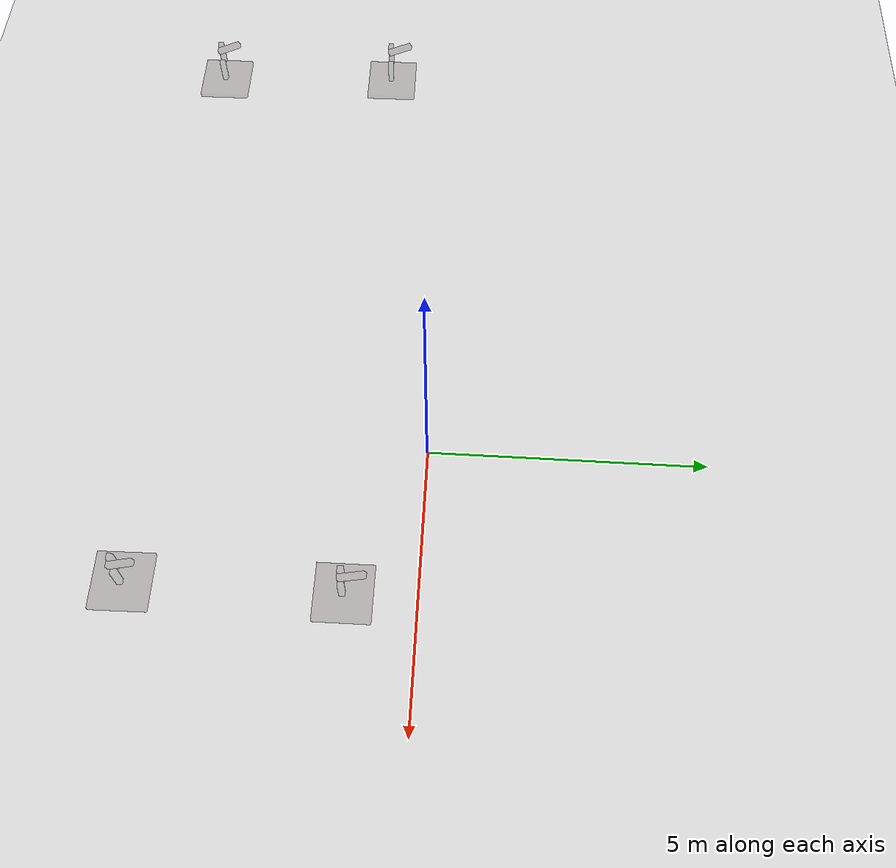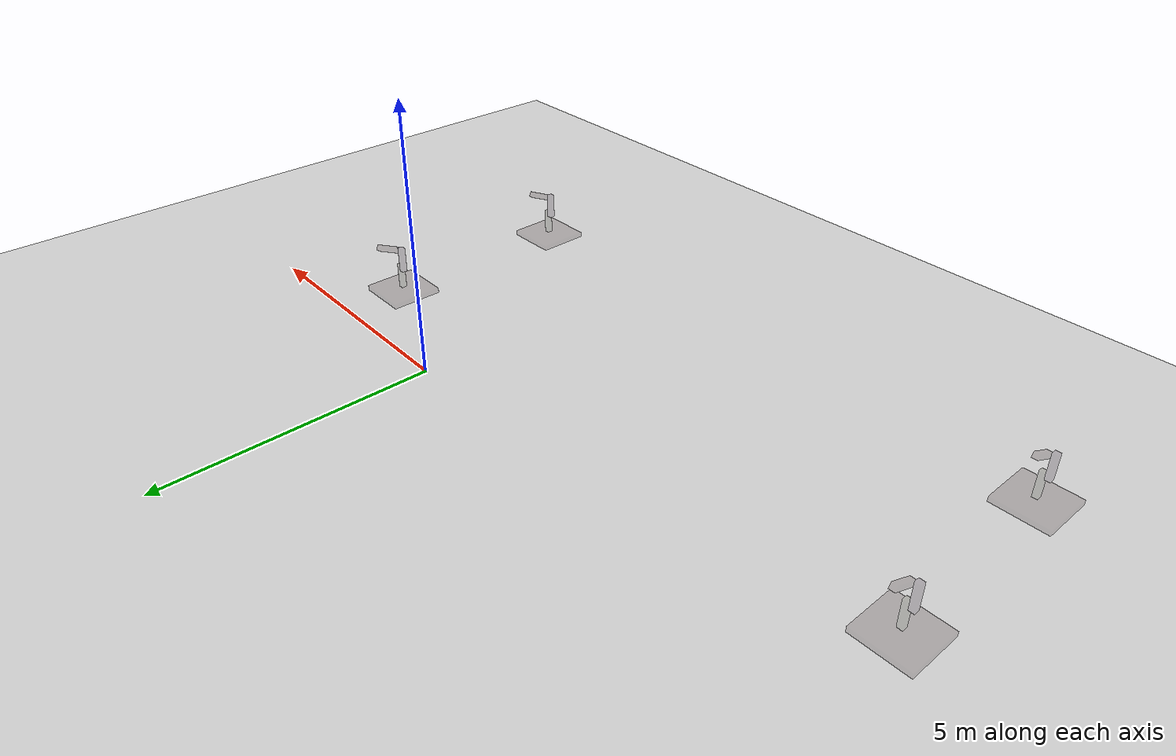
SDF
<sdf version="1.6">
 <world name="default">
  <model name="ground_plane">
   <static>1</static>
   <link name="link">
    <collision name="collision">
     <geometry><plane><normal>0 0 1</normal><size>100 100</size></plane></geometry>
     <surface>
      <contact><collide_bitmask>65535</collide_bitmask></contact>
      <friction><ode><mu>100</mu><mu2>50</mu2></ode></friction>
     </surface>
    </collision>
    <visual name="visual">
     <cast_shadows>0</cast_shadows>
     <geometry><plane><normal>0 0 1</normal><size>100 100</size></plane></geometry>
     <material>
      <script><uri>file://media/materials/scripts/gazebo.material</uri><name>Gazebo/Grey</name></script>
     </material>
    </visual>
   </link>
  </model>
  <model name="2-Axis_Robot">
   <link name="link_0">
    <inertial>
     <mass>1</mass>
     <inertia>
      <ixx>0.166667</ixx>
      <ixy>0</ixy>
      <ixz>0</ixz>
      <iyy>0.166667</iyy>
      <iyz>0</iyz>
      <izz>0.166667</izz>
     </inertia>
    </inertial>
    <pose>-17.7381 -5.67609 -0.41036 0 -0 0</pose>
    <visual name="visual">
     <geometry><box><size>1 1 0.1</size></box></geometry>
     <material>
      <lighting>1</lighting>
      <script><uri>file://media/materials/scripts/gazebo.material</uri><name>Gazebo/Grey</name></script>
      <shader type="pixel"><normal_map>__default__</normal_map></shader>
      <ambient>0.1 0 0 0.1</ambient>
      <diffuse>0.1 0 0 0.1</diffuse>
      <specular>0 0 0 0</specular>
      <emissive>0 0 0 1</emissive>
     </material>
    </visual>
    <collision name="collision">
     <geometry><box><size>1 1 0.1</size></box></geometry>
     <surface>
      <friction>
       <ode><mu>1</mu><mu2>1</mu2><fdir1>0 0 0</fdir1><slip1>0</slip1><slip2>0</slip2></ode>
       <torsional>
        <coefficient>1</coefficient>
        <patch_radius>0</patch_radius>
        <surface_radius>0</surface_radius>
        <use_patch_radius>1</use_patch_radius>
        <ode><slip>0</slip></ode>
       </torsional>
      </friction>
      <bounce><restitution_coefficient>0</restitution_coefficient><threshold>1e+06</threshold></bounce>
      <contact>
       <collide_without_contact>0</collide_without_contact>
       <collide_without_contact_bitmask>1</collide_without_contact_bitmask>
       <collide_bitmask>1</collide_bitmask>
       <ode>
        <soft_cfm>0</soft_cfm>
        <soft_erp>0.2</soft_erp>
        <kp>1e+13</kp>
        <kd>1</kd>
        <max_vel>0.01</max_vel>
        <min_depth>0</min_depth>
       </ode>
       <bullet>
        <split_impulse>1</split_impulse>
        <split_impulse_penetration_threshold>-0.01</split_impulse_penetration_threshold>
        <soft_cfm>0</soft_cfm>
        <soft_erp>0.2</soft_erp>
        <kp>1e+13</kp>
        <kd>1</kd>
       </bullet>
      </contact>
     </surface>
    </collision>
   </link>
   <link name="link_1">
    <inertial>
     <mass>1</mass>
     <inertia>
      <ixx>0.166667</ixx>
      <ixy>0</ixy>
      <ixz>0</ixz>
      <iyy>0.166667</iyy>
      <iyz>0</iyz>
      <izz>0.166667</izz>
     </inertia>
    </inertial>
    <pose>-17.7126 -5.69148 -0.11036 0 -0 0</pose>
    <visual name="visual">
     <geometry><box><size>0.1 0.1 0.5</size></box></geometry>
     <material>
      <lighting>1</lighting>
      <script><uri>file://media/materials/scripts/gazebo.material</uri><name>Gazebo/Grey</name></script>
      <shader type="pixel"><normal_map>__default__</normal_map></shader>
      <ambient>0.1 0.1 0 0.1</ambient>
      <diffuse>0.1 0.1 0 0.1</diffuse>
      <specular>0 0 0 0</specular>
      <emissive>0 0 0 1</emissive>
     </material>
    </visual>
    <collision name="collision">
     <geometry><box><size>0.1 0.1 0.5</size></box></geometry>
     <surface>
      <friction>
       <ode><mu>1</mu><mu2>1</mu2><fdir1>0 0 0</fdir1><slip1>0</slip1><slip2>0</slip2></ode>
       <torsional>
        <coefficient>1</coefficient>
        <patch_radius>0</patch_radius>
        <surface_radius>0</surface_radius>
        <use_patch_radius>1</use_patch_radius>
        <ode><slip>0</slip></ode>
       </torsional>
      </friction>
      <bounce><restitution_coefficient>0</restitution_coefficient><threshold>1e+06</threshold></bounce>
      <contact>
       <collide_without_contact>0</collide_without_contact>
       <collide_without_contact_bitmask>1</collide_without_contact_bitmask>
       <collide_bitmask>1</collide_bitmask>
       <ode>
        <soft_cfm>0</soft_cfm>
        <soft_erp>0.2</soft_erp>
        <kp>1e+13</kp>
        <kd>1</kd>
        <max_vel>0.01</max_vel>
        <min_depth>0</min_depth>
       </ode>
       <bullet>
        <split_impulse>1</split_impulse>
        <split_impulse_penetration_threshold>-0.01</split_impulse_penetration_threshold>
        <soft_cfm>0</soft_cfm>
        <soft_erp>0.2</soft_erp>
        <kp>1e+13</kp>
        <kd>1</kd>
       </bullet>
      </contact>
     </surface>
    </collision>
   </link>
   <link name="link_4">
    <inertial>
     <mass>1</mass>
     <inertia>
      <ixx>0.166667</ixx>
      <ixy>0</ixy>
      <ixz>0</ixz>
      <iyy>0.166667</iyy>
      <iyz>0</iyz>
      <izz>0.166667</izz>
     </inertia>
    </inertial>
    <pose>-17.8202 -5.67559 0.28964 0 -0 0</pose>
    <visual name="visual">
     <geometry><box><size>0.1 0.1 0.5</size></box></geometry>
     <material>
      <lighting>1</lighting>
      <script><uri>file://media/materials/scripts/gazebo.material</uri><name>Gazebo/Grey</name></script>
      <shader type="pixel"><normal_map>__default__</normal_map></shader>
      <ambient>0.1 0 0.1 0.1</ambient>
      <diffuse>0.1 0 0.1 0.1</diffuse>
      <specular>0 0 0 0</specular>
      <emissive>0 0 0 0</emissive>
     </material>
    </visual>
    <collision name="collision">
     <geometry><box><size>0.1 0.1 0.5</size></box></geometry>
     <surface>
      <friction>
       <ode><mu>1</mu><mu2>1</mu2><fdir1>0 0 0</fdir1><slip1>0</slip1><slip2>0</slip2></ode>
       <torsional>
        <coefficient>1</coefficient>
        <patch_radius>0</patch_radius>
        <surface_radius>0</surface_radius>
        <use_patch_radius>1</use_patch_radius>
        <ode><slip>0</slip></ode>
       </torsional>
      </friction>
      <bounce><restitution_coefficient>0</restitution_coefficient><threshold>1e+06</threshold></bounce>
      <contact>
       <collide_without_contact>0</collide_without_contact>
       <collide_without_contact_bitmask>1</collide_without_contact_bitmask>
       <collide_bitmask>1</collide_bitmask>
       <ode>
        <soft_cfm>0</soft_cfm>
        <soft_erp>0.2</soft_erp>
        <kp>1e+13</kp>
        <kd>1</kd>
        <max_vel>0.01</max_vel>
        <min_depth>0</min_depth>
       </ode>
       <bullet>
        <split_impulse>1</split_impulse>
        <split_impulse_penetration_threshold>-0.01</split_impulse_penetration_threshold>
        <soft_cfm>0</soft_cfm>
        <soft_erp>0.2</soft_erp>
        <kp>1e+13</kp>
        <kd>1</kd>
       </bullet>
      </contact>
     </surface>
    </collision>
   </link>
   <link name="link_5">
    <inertial>
     <mass>1</mass>
     <inertia>
      <ixx>0.166667</ixx>
      <ixy>0</ixy>
      <ixz>0</ixz>
      <iyy>0.166667</iyy>
      <iyz>0</iyz>
      <izz>0.166667</izz>
     </inertia>
    </inertial>
    <pose>-17.7012 -5.48011 0.53964 2 -0 0</pose>
    <visual name="visual">
     <geometry><box><size>0.1 0.1 0.5</size></box></geometry>
     <material>
      <lighting>1</lighting>
      <script><uri>file://media/materials/scripts/gazebo.material</uri><name>Gazebo/Grey</name></script>
      <shader type="pixel"><normal_map>__default__</normal_map></shader>
      <ambient>0.1 0 0 0.1</ambient>
      <diffuse>0.1 0 0 0.1</diffuse>
      <specular>0 0 0 0</specular>
      <emissive>0 0 0 1</emissive>
     </material>
    </visual>
    <collision name="collision">
     <geometry><box><size>0.1 0.1 0.5</size></box></geometry>
     <surface>
      <friction>
       <ode><mu>1</mu><mu2>1</mu2><fdir1>0 0 0</fdir1><slip1>0</slip1><slip2>0</slip2></ode>
       <torsional>
        <coefficient>1</coefficient>
        <patch_radius>0</patch_radius>
        <surface_radius>0</surface_radius>
        <use_patch_radius>1</use_patch_radius>
        <ode><slip>0</slip></ode>
       </torsional>
      </friction>
      <bounce><restitution_coefficient>0</restitution_coefficient><threshold>1e+06</threshold></bounce>
      <contact>
       <collide_without_contact>0</collide_without_contact>
       <collide_without_contact_bitmask>1</collide_without_contact_bitmask>
       <collide_bitmask>1</collide_bitmask>
       <ode>
        <soft_cfm>0</soft_cfm>
        <soft_erp>0.2</soft_erp>
        <kp>1e+13</kp>
        <kd>1</kd>
        <max_vel>0.01</max_vel>
        <min_depth>0</min_depth>
       </ode>
       <bullet>
        <split_impulse>1</split_impulse>
        <split_impulse_penetration_threshold>-0.01</split_impulse_penetration_threshold>
        <soft_cfm>0</soft_cfm>
        <soft_erp>0.2</soft_erp>
        <kp>1e+13</kp>
        <kd>1</kd>
       </bullet>
      </contact>
     </surface>
    </collision>
   </link>
   <joint name="link_0_JOINT_0" type="fixed">
    <parent>link_0</parent>
    <child>link_1</child>
    <pose>0 0 -0.25 0 -0 0</pose>
    <physics>
     <ode><limit><cfm>0</cfm><erp>0.2</erp></limit><suspension><cfm>0</cfm><erp>0.2</erp></suspension></ode>
    </physics>
   </joint>
   <joint name="link_1_JOINT_1" type="revolute">
    <parent>link_1</parent>
    <child>link_4</child>
    <pose>0 0 -0.2 1 -0 0</pose>
    <axis>
     <xyz>1 0 0</xyz>
     <limit>
      <lower>-1.79769e+308</lower>
      <upper>1.79769e+308</upper>
      <effort>-1</effort>
      <velocity>-1</velocity>
     </limit>
     <dynamics>
      <spring_reference>0</spring_reference>
      <spring_stiffness>0</spring_stiffness>
      <damping>0</damping>
      <friction>0</friction>
     </dynamics>
    </axis>
    <physics>
     <ode><limit><cfm>0</cfm><erp>0.2</erp></limit><suspension><cfm>0</cfm><erp>0.2</erp></suspension></ode>
    </physics>
   </joint>
   <joint name="link_4_JOINT_2" type="revolute">
    <parent>link_4</parent>
    <child>link_5</child>
    <pose>-0.05 0 0.22 0 -0 0</pose>
    <axis>
     <xyz>1 0 0</xyz>
     <limit>
      <lower>-1.79769e+308</lower>
      <upper>1.79769e+308</upper>
      <effort>-1</effort>
      <velocity>-1</velocity>
     </limit>
     <dynamics>
      <spring_reference>0</spring_reference>
      <spring_stiffness>0</spring_stiffness>
      <damping>0</damping>
      <friction>0</friction>
     </dynamics>
    </axis>
    <physics>
     <ode><limit><cfm>0</cfm><erp>0.2</erp></limit><suspension><cfm>0</cfm><erp>0.2</erp></suspension></ode>
    </physics>
   </joint>
   <static>0</static>
   <pose>20.4283 4.45439 0.46036 0 -0 0.001269</pose>
  </model>
  <model name="2-Axis_Robot_clone">
   <link name="link_0">
    <inertial>
     <mass>1</mass>
     <inertia>
      <ixx>0.166667</ixx>
      <ixy>0</ixy>
      <ixz>0</ixz>
      <iyy>0.166667</iyy>
      <iyz>0</iyz>
      <izz>0.166667</izz>
     </inertia>
    </inertial>
    <pose>-17.7381 -5.67609 -0.41036 0 -0 0</pose>
    <visual name="visual">
     <geometry><box><size>1 1 0.1</size></box></geometry>
     <material>
      <lighting>1</lighting>
      <script><uri>file://media/materials/scripts/gazebo.material</uri><name>Gazebo/Grey</name></script>
      <shader type="pixel"><normal_map>__default__</normal_map></shader>
      <ambient>0.1 0 0 0.1</ambient>
      <diffuse>0.1 0 0 0.1</diffuse>
      <specular>0 0 0 0</specular>
      <emissive>0 0 0 1</emissive>
     </material>
    </visual>
    <collision name="collision">
     <geometry><box><size>1 1 0.1</size></box></geometry>
     <surface>
      <friction>
       <ode><mu>1</mu><mu2>1</mu2><fdir1>0 0 0</fdir1><slip1>0</slip1><slip2>0</slip2></ode>
       <torsional>
        <coefficient>1</coefficient>
        <patch_radius>0</patch_radius>
        <surface_radius>0</surface_radius>
        <use_patch_radius>1</use_patch_radius>
        <ode><slip>0</slip></ode>
       </torsional>
      </friction>
      <bounce><restitution_coefficient>0</restitution_coefficient><threshold>1e+06</threshold></bounce>
      <contact>
       <collide_without_contact>0</collide_without_contact>
       <collide_without_contact_bitmask>1</collide_without_contact_bitmask>
       <collide_bitmask>1</collide_bitmask>
       <ode>
        <soft_cfm>0</soft_cfm>
        <soft_erp>0.2</soft_erp>
        <kp>1e+13</kp>
        <kd>1</kd>
        <max_vel>0.01</max_vel>
        <min_depth>0</min_depth>
       </ode>
       <bullet>
        <split_impulse>1</split_impulse>
        <split_impulse_penetration_threshold>-0.01</split_impulse_penetration_threshold>
        <soft_cfm>0</soft_cfm>
        <soft_erp>0.2</soft_erp>
        <kp>1e+13</kp>
        <kd>1</kd>
       </bullet>
      </contact>
     </surface>
    </collision>
   </link>
   <link name="link_1">
    <inertial>
     <mass>1</mass>
     <inertia>
      <ixx>0.166667</ixx>
      <ixy>0</ixy>
      <ixz>0</ixz>
      <iyy>0.166667</iyy>
      <iyz>0</iyz>
      <izz>0.166667</izz>
     </inertia>
    </inertial>
    <pose>-17.7126 -5.69148 -0.11036 0 -0 0</pose>
    <visual name="visual">
     <geometry><box><size>0.1 0.1 0.5</size></box></geometry>
     <material>
      <lighting>1</lighting>
      <script><uri>file://media/materials/scripts/gazebo.material</uri><name>Gazebo/Grey</name></script>
      <shader type="pixel"><normal_map>__default__</normal_map></shader>
      <ambient>0.1 0.1 0 0.1</ambient>
      <diffuse>0.1 0.1 0 0.1</diffuse>
      <specular>0 0 0 0</specular>
      <emissive>0 0 0 1</emissive>
     </material>
    </visual>
    <collision name="collision">
     <geometry><box><size>0.1 0.1 0.5</size></box></geometry>
     <surface>
      <friction>
       <ode><mu>1</mu><mu2>1</mu2><fdir1>0 0 0</fdir1><slip1>0</slip1><slip2>0</slip2></ode>
       <torsional>
        <coefficient>1</coefficient>
        <patch_radius>0</patch_radius>
        <surface_radius>0</surface_radius>
        <use_patch_radius>1</use_patch_radius>
        <ode><slip>0</slip></ode>
       </torsional>
      </friction>
      <bounce><restitution_coefficient>0</restitution_coefficient><threshold>1e+06</threshold></bounce>
      <contact>
       <collide_without_contact>0</collide_without_contact>
       <collide_without_contact_bitmask>1</collide_without_contact_bitmask>
       <collide_bitmask>1</collide_bitmask>
       <ode>
        <soft_cfm>0</soft_cfm>
        <soft_erp>0.2</soft_erp>
        <kp>1e+13</kp>
        <kd>1</kd>
        <max_vel>0.01</max_vel>
        <min_depth>0</min_depth>
       </ode>
       <bullet>
        <split_impulse>1</split_impulse>
        <split_impulse_penetration_threshold>-0.01</split_impulse_penetration_threshold>
        <soft_cfm>0</soft_cfm>
        <soft_erp>0.2</soft_erp>
        <kp>1e+13</kp>
        <kd>1</kd>
       </bullet>
      </contact>
     </surface>
    </collision>
   </link>
   <link name="link_4">
    <inertial>
     <mass>1</mass>
     <inertia>
      <ixx>0.166667</ixx>
      <ixy>0</ixy>
      <ixz>0</ixz>
      <iyy>0.166667</iyy>
      <iyz>0</iyz>
      <izz>0.166667</izz>
     </inertia>
    </inertial>
    <pose>-17.8202 -5.67559 0.28964 0 -0 0</pose>
    <visual name="visual">
     <geometry><box><size>0.1 0.1 0.5</size></box></geometry>
     <material>
      <lighting>1</lighting>
      <script><uri>file://media/materials/scripts/gazebo.material</uri><name>Gazebo/Grey</name></script>
      <shader type="pixel"><normal_map>__default__</normal_map></shader>
      <ambient>0.1 0 0.1 0.1</ambient>
      <diffuse>0.1 0 0.1 0.1</diffuse>
      <specular>0 0 0 0</specular>
      <emissive>0 0 0 0</emissive>
     </material>
    </visual>
    <collision name="collision">
     <geometry><box><size>0.1 0.1 0.5</size></box></geometry>
     <surface>
      <friction>
       <ode><mu>1</mu><mu2>1</mu2><fdir1>0 0 0</fdir1><slip1>0</slip1><slip2>0</slip2></ode>
       <torsional>
        <coefficient>1</coefficient>
        <patch_radius>0</patch_radius>
        <surface_radius>0</surface_radius>
        <use_patch_radius>1</use_patch_radius>
        <ode><slip>0</slip></ode>
       </torsional>
      </friction>
      <bounce><restitution_coefficient>0</restitution_coefficient><threshold>1e+06</threshold></bounce>
      <contact>
       <collide_without_contact>0</collide_without_contact>
       <collide_without_contact_bitmask>1</collide_without_contact_bitmask>
       <collide_bitmask>1</collide_bitmask>
       <ode>
        <soft_cfm>0</soft_cfm>
        <soft_erp>0.2</soft_erp>
        <kp>1e+13</kp>
        <kd>1</kd>
        <max_vel>0.01</max_vel>
        <min_depth>0</min_depth>
       </ode>
       <bullet>
        <split_impulse>1</split_impulse>
        <split_impulse_penetration_threshold>-0.01</split_impulse_penetration_threshold>
        <soft_cfm>0</soft_cfm>
        <soft_erp>0.2</soft_erp>
        <kp>1e+13</kp>
        <kd>1</kd>
       </bullet>
      </contact>
     </surface>
    </collision>
   </link>
   <link name="link_5">
    <inertial>
     <mass>1</mass>
     <inertia>
      <ixx>0.166667</ixx>
      <ixy>0</ixy>
      <ixz>0</ixz>
      <iyy>0.166667</iyy>
      <iyz>0</iyz>
      <izz>0.166667</izz>
     </inertia>
    </inertial>
    <pose>-17.7012 -5.48011 0.53964 2 -0 0</pose>
    <visual name="visual">
     <geometry><box><size>0.1 0.1 0.5</size></box></geometry>
     <material>
      <lighting>1</lighting>
      <script><uri>file://media/materials/scripts/gazebo.material</uri><name>Gazebo/Grey</name></script>
      <shader type="pixel"><normal_map>__default__</normal_map></shader>
      <ambient>0.1 0 0 0.1</ambient>
      <diffuse>0.1 0 0 0.1</diffuse>
      <specular>0 0 0 0</specular>
      <emissive>0 0 0 1</emissive>
     </material>
    </visual>
    <collision name="collision">
     <geometry><box><size>0.1 0.1 0.5</size></box></geometry>
     <surface>
      <friction>
       <ode><mu>1</mu><mu2>1</mu2><fdir1>0 0 0</fdir1><slip1>0</slip1><slip2>0</slip2></ode>
       <torsional>
        <coefficient>1</coefficient>
        <patch_radius>0</patch_radius>
        <surface_radius>0</surface_radius>
        <use_patch_radius>1</use_patch_radius>
        <ode><slip>0</slip></ode>
       </torsional>
      </friction>
      <bounce><restitution_coefficient>0</restitution_coefficient><threshold>1e+06</threshold></bounce>
      <contact>
       <collide_without_contact>0</collide_without_contact>
       <collide_without_contact_bitmask>1</collide_without_contact_bitmask>
       <collide_bitmask>1</collide_bitmask>
       <ode>
        <soft_cfm>0</soft_cfm>
        <soft_erp>0.2</soft_erp>
        <kp>1e+13</kp>
        <kd>1</kd>
        <max_vel>0.01</max_vel>
        <min_depth>0</min_depth>
       </ode>
       <bullet>
        <split_impulse>1</split_impulse>
        <split_impulse_penetration_threshold>-0.01</split_impulse_penetration_threshold>
        <soft_cfm>0</soft_cfm>
        <soft_erp>0.2</soft_erp>
        <kp>1e+13</kp>
        <kd>1</kd>
       </bullet>
      </contact>
     </surface>
    </collision>
   </link>
   <joint name="link_0_JOINT_0" type="fixed">
    <parent>link_0</parent>
    <child>link_1</child>
    <pose>0 0 -0.25 0 -0 0</pose>
    <physics>
     <ode><limit><cfm>0</cfm><erp>0.2</erp></limit><suspension><cfm>0</cfm><erp>0.2</erp></suspension></ode>
    </physics>
   </joint>
   <joint name="link_1_JOINT_1" type="revolute">
    <parent>link_1</parent>
    <child>link_4</child>
    <pose>0 0 -0.2 1 -0 0</pose>
    <axis>
     <xyz>1 0 0</xyz>
     <limit>
      <lower>-1.79769e+308</lower>
      <upper>1.79769e+308</upper>
      <effort>-1</effort>
      <velocity>-1</velocity>
     </limit>
     <dynamics>
      <spring_reference>0</spring_reference>
      <spring_stiffness>0</spring_stiffness>
      <damping>0</damping>
      <friction>0</friction>
     </dynamics>
    </axis>
    <physics>
     <ode><limit><cfm>0</cfm><erp>0.2</erp></limit><suspension><cfm>0</cfm><erp>0.2</erp></suspension></ode>
    </physics>
   </joint>
   <joint name="link_4_JOINT_2" type="revolute">
    <parent>link_4</parent>
    <child>link_5</child>
    <pose>-0.05 0 0.22 0 -0 0</pose>
    <axis>
     <xyz>1 0 0</xyz>
     <limit>
      <lower>-1.79769e+308</lower>
      <upper>1.79769e+308</upper>
      <effort>-1</effort>
      <velocity>-1</velocity>
     </limit>
     <dynamics>
      <spring_reference>0</spring_reference>
      <spring_stiffness>0</spring_stiffness>
      <damping>0</damping>
      <friction>0</friction>
     </dynamics>
    </axis>
    <physics>
     <ode><limit><cfm>0</cfm><erp>0.2</erp></limit><suspension><cfm>0</cfm><erp>0.2</erp></suspension></ode>
    </physics>
   </joint>
   <static>0</static>
   <pose>8.8626 0.934938 0.460316 0 2e-06 0.010389</pose>
  </model>
  <model name="2-Axis_Robot_clone_0">
   <link name="link_0">
    <inertial>
     <mass>1</mass>
     <inertia>
      <ixx>0.166667</ixx>
      <ixy>0</ixy>
      <ixz>0</ixz>
      <iyy>0.166667</iyy>
      <iyz>0</iyz>
      <izz>0.166667</izz>
     </inertia>
    </inertial>
    <pose>-17.7381 -5.67609 -0.41036 0 -0 0</pose>
    <visual name="visual">
     <geometry><box><size>1 1 0.1</size></box></geometry>
     <material>
      <lighting>1</lighting>
      <script><uri>file://media/materials/scripts/gazebo.material</uri><name>Gazebo/Grey</name></script>
      <shader type="pixel"><normal_map>__default__</normal_map></shader>
      <ambient>0.1 0 0 0.1</ambient>
      <diffuse>0.1 0 0 0.1</diffuse>
      <specular>0 0 0 0</specular>
      <emissive>0 0 0 1</emissive>
     </material>
    </visual>
    <collision name="collision">
     <geometry><box><size>1 1 0.1</size></box></geometry>
     <surface>
      <friction>
       <ode><mu>1</mu><mu2>1</mu2><fdir1>0 0 0</fdir1><slip1>0</slip1><slip2>0</slip2></ode>
       <torsional>
        <coefficient>1</coefficient>
        <patch_radius>0</patch_radius>
        <surface_radius>0</surface_radius>
        <use_patch_radius>1</use_patch_radius>
        <ode><slip>0</slip></ode>
       </torsional>
      </friction>
      <bounce><restitution_coefficient>0</restitution_coefficient><threshold>1e+06</threshold></bounce>
      <contact>
       <collide_without_contact>0</collide_without_contact>
       <collide_without_contact_bitmask>1</collide_without_contact_bitmask>
       <collide_bitmask>1</collide_bitmask>
       <ode>
        <soft_cfm>0</soft_cfm>
        <soft_erp>0.2</soft_erp>
        <kp>1e+13</kp>
        <kd>1</kd>
        <max_vel>0.01</max_vel>
        <min_depth>0</min_depth>
       </ode>
       <bullet>
        <split_impulse>1</split_impulse>
        <split_impulse_penetration_threshold>-0.01</split_impulse_penetration_threshold>
        <soft_cfm>0</soft_cfm>
        <soft_erp>0.2</soft_erp>
        <kp>1e+13</kp>
        <kd>1</kd>
       </bullet>
      </contact>
     </surface>
    </collision>
   </link>
   <link name="link_1">
    <inertial>
     <mass>1</mass>
     <inertia>
      <ixx>0.166667</ixx>
      <ixy>0</ixy>
      <ixz>0</ixz>
      <iyy>0.166667</iyy>
      <iyz>0</iyz>
      <izz>0.166667</izz>
     </inertia>
    </inertial>
    <pose>-17.7126 -5.69148 -0.11036 0 -0 0</pose>
    <visual name="visual">
     <geometry><box><size>0.1 0.1 0.5</size></box></geometry>
     <material>
      <lighting>1</lighting>
      <script><uri>file://media/materials/scripts/gazebo.material</uri><name>Gazebo/Grey</name></script>
      <shader type="pixel"><normal_map>__default__</normal_map></shader>
      <ambient>0.1 0.1 0 0.1</ambient>
      <diffuse>0.1 0.1 0 0.1</diffuse>
      <specular>0 0 0 0</specular>
      <emissive>0 0 0 1</emissive>
     </material>
    </visual>
    <collision name="collision">
     <geometry><box><size>0.1 0.1 0.5</size></box></geometry>
     <surface>
      <friction>
       <ode><mu>1</mu><mu2>1</mu2><fdir1>0 0 0</fdir1><slip1>0</slip1><slip2>0</slip2></ode>
       <torsional>
        <coefficient>1</coefficient>
        <patch_radius>0</patch_radius>
        <surface_radius>0</surface_radius>
        <use_patch_radius>1</use_patch_radius>
        <ode><slip>0</slip></ode>
       </torsional>
      </friction>
      <bounce><restitution_coefficient>0</restitution_coefficient><threshold>1e+06</threshold></bounce>
      <contact>
       <collide_without_contact>0</collide_without_contact>
       <collide_without_contact_bitmask>1</collide_without_contact_bitmask>
       <collide_bitmask>1</collide_bitmask>
       <ode>
        <soft_cfm>0</soft_cfm>
        <soft_erp>0.2</soft_erp>
        <kp>1e+13</kp>
        <kd>1</kd>
        <max_vel>0.01</max_vel>
        <min_depth>0</min_depth>
       </ode>
       <bullet>
        <split_impulse>1</split_impulse>
        <split_impulse_penetration_threshold>-0.01</split_impulse_penetration_threshold>
        <soft_cfm>0</soft_cfm>
        <soft_erp>0.2</soft_erp>
        <kp>1e+13</kp>
        <kd>1</kd>
       </bullet>
      </contact>
     </surface>
    </collision>
   </link>
   <link name="link_4">
    <inertial>
     <mass>1</mass>
     <inertia>
      <ixx>0.166667</ixx>
      <ixy>0</ixy>
      <ixz>0</ixz>
      <iyy>0.166667</iyy>
      <iyz>0</iyz>
      <izz>0.166667</izz>
     </inertia>
    </inertial>
    <pose>-17.8202 -5.67559 0.28964 0 -0 0</pose>
    <visual name="visual">
     <geometry><box><size>0.1 0.1 0.5</size></box></geometry>
     <material>
      <lighting>1</lighting>
      <script><uri>file://media/materials/scripts/gazebo.material</uri><name>Gazebo/Grey</name></script>
      <shader type="pixel"><normal_map>__default__</normal_map></shader>
      <ambient>0.1 0 0.1 0.1</ambient>
      <diffuse>0.1 0 0.1 0.1</diffuse>
      <specular>0 0 0 0</specular>
      <emissive>0 0 0 0</emissive>
     </material>
    </visual>
    <collision name="collision">
     <geometry><box><size>0.1 0.1 0.5</size></box></geometry>
     <surface>
      <friction>
       <ode><mu>1</mu><mu2>1</mu2><fdir1>0 0 0</fdir1><slip1>0</slip1><slip2>0</slip2></ode>
       <torsional>
        <coefficient>1</coefficient>
        <patch_radius>0</patch_radius>
        <surface_radius>0</surface_radius>
        <use_patch_radius>1</use_patch_radius>
        <ode><slip>0</slip></ode>
       </torsional>
      </friction>
      <bounce><restitution_coefficient>0</restitution_coefficient><threshold>1e+06</threshold></bounce>
      <contact>
       <collide_without_contact>0</collide_without_contact>
       <collide_without_contact_bitmask>1</collide_without_contact_bitmask>
       <collide_bitmask>1</collide_bitmask>
       <ode>
        <soft_cfm>0</soft_cfm>
        <soft_erp>0.2</soft_erp>
        <kp>1e+13</kp>
        <kd>1</kd>
        <max_vel>0.01</max_vel>
        <min_depth>0</min_depth>
       </ode>
       <bullet>
        <split_impulse>1</split_impulse>
        <split_impulse_penetration_threshold>-0.01</split_impulse_penetration_threshold>
        <soft_cfm>0</soft_cfm>
        <soft_erp>0.2</soft_erp>
        <kp>1e+13</kp>
        <kd>1</kd>
       </bullet>
      </contact>
     </surface>
    </collision>
   </link>
   <link name="link_5">
    <inertial>
     <mass>1</mass>
     <inertia>
      <ixx>0.166667</ixx>
      <ixy>0</ixy>
      <ixz>0</ixz>
      <iyy>0.166667</iyy>
      <iyz>0</iyz>
      <izz>0.166667</izz>
     </inertia>
    </inertial>
    <pose>-17.7012 -5.48011 0.53964 2 -0 0</pose>
    <visual name="visual">
     <geometry><box><size>0.1 0.1 0.5</size></box></geometry>
     <material>
      <lighting>1</lighting>
      <script><uri>file://media/materials/scripts/gazebo.material</uri><name>Gazebo/Grey</name></script>
      <shader type="pixel"><normal_map>__default__</normal_map></shader>
      <ambient>0.1 0 0 0.1</ambient>
      <diffuse>0.1 0 0 0.1</diffuse>
      <specular>0 0 0 0</specular>
      <emissive>0 0 0 1</emissive>
     </material>
    </visual>
    <collision name="collision">
     <geometry><box><size>0.1 0.1 0.5</size></box></geometry>
     <surface>
      <friction>
       <ode><mu>1</mu><mu2>1</mu2><fdir1>0 0 0</fdir1><slip1>0</slip1><slip2>0</slip2></ode>
       <torsional>
        <coefficient>1</coefficient>
        <patch_radius>0</patch_radius>
        <surface_radius>0</surface_radius>
        <use_patch_radius>1</use_patch_radius>
        <ode><slip>0</slip></ode>
       </torsional>
      </friction>
      <bounce><restitution_coefficient>0</restitution_coefficient><threshold>1e+06</threshold></bounce>
      <contact>
       <collide_without_contact>0</collide_without_contact>
       <collide_without_contact_bitmask>1</collide_without_contact_bitmask>
       <collide_bitmask>1</collide_bitmask>
       <ode>
        <soft_cfm>0</soft_cfm>
        <soft_erp>0.2</soft_erp>
        <kp>1e+13</kp>
        <kd>1</kd>
        <max_vel>0.01</max_vel>
        <min_depth>0</min_depth>
       </ode>
       <bullet>
        <split_impulse>1</split_impulse>
        <split_impulse_penetration_threshold>-0.01</split_impulse_penetration_threshold>
        <soft_cfm>0</soft_cfm>
        <soft_erp>0.2</soft_erp>
        <kp>1e+13</kp>
        <kd>1</kd>
       </bullet>
      </contact>
     </surface>
    </collision>
   </link>
   <joint name="link_0_JOINT_0" type="fixed">
    <parent>link_0</parent>
    <child>link_1</child>
    <pose>0 0 -0.25 0 -0 0</pose>
    <physics>
     <ode><limit><cfm>0</cfm><erp>0.2</erp></limit><suspension><cfm>0</cfm><erp>0.2</erp></suspension></ode>
    </physics>
   </joint>
   <joint name="link_1_JOINT_1" type="revolute">
    <parent>link_1</parent>
    <child>link_4</child>
    <pose>0 0 -0.2 1 -0 0</pose>
    <axis>
     <xyz>1 0 0</xyz>
     <limit>
      <lower>-1.79769e+308</lower>
      <upper>1.79769e+308</upper>
      <effort>-1</effort>
      <velocity>-1</velocity>
     </limit>
     <dynamics>
      <spring_reference>0</spring_reference>
      <spring_stiffness>0</spring_stiffness>
      <damping>0</damping>
      <friction>0</friction>
     </dynamics>
    </axis>
    <physics>
     <ode><limit><cfm>0</cfm><erp>0.2</erp></limit><suspension><cfm>0</cfm><erp>0.2</erp></suspension></ode>
    </physics>
   </joint>
   <joint name="link_4_JOINT_2" type="revolute">
    <parent>link_4</parent>
    <child>link_5</child>
    <pose>-0.05 0 0.22 0 -0 0</pose>
    <axis>
     <xyz>1 0 0</xyz>
     <limit>
      <lower>-1.79769e+308</lower>
      <upper>1.79769e+308</upper>
      <effort>-1</effort>
      <velocity>-1</velocity>
     </limit>
     <dynamics>
      <spring_reference>0</spring_reference>
      <spring_stiffness>0</spring_stiffness>
      <damping>0</damping>
      <friction>0</friction>
     </dynamics>
    </axis>
    <physics>
     <ode><limit><cfm>0</cfm><erp>0.2</erp></limit><suspension><cfm>0</cfm><erp>0.2</erp></suspension></ode>
    </physics>
   </joint>
   <static>0</static>
   <pose>8.70102 4.57485 0.460438 -0 -5e-06 0.011607</pose>
  </model>
  <model name="2-Axis_Robot_clone_1">
   <link name="link_0">
    <inertial>
     <mass>1</mass>
     <inertia>
      <ixx>0.166667</ixx>
      <ixy>0</ixy>
      <ixz>0</ixz>
      <iyy>0.166667</iyy>
      <iyz>0</iyz>
      <izz>0.166667</izz>
     </inertia>
    </inertial>
    <pose>-17.7381 -5.67609 -0.41036 0 -0 0</pose>
    <visual name="visual">
     <geometry><box><size>1 1 0.1</size></box></geometry>
     <material>
      <lighting>1</lighting>
      <script><uri>file://media/materials/scripts/gazebo.material</uri><name>Gazebo/Grey</name></script>
      <shader type="pixel"><normal_map>__default__</normal_map></shader>
      <ambient>0.1 0 0 0.1</ambient>
      <diffuse>0.1 0 0 0.1</diffuse>
      <specular>0 0 0 0</specular>
      <emissive>0 0 0 1</emissive>
     </material>
    </visual>
    <collision name="collision">
     <geometry><box><size>1 1 0.1</size></box></geometry>
     <surface>
      <friction>
       <ode><mu>1</mu><mu2>1</mu2><fdir1>0 0 0</fdir1><slip1>0</slip1><slip2>0</slip2></ode>
       <torsional>
        <coefficient>1</coefficient>
        <patch_radius>0</patch_radius>
        <surface_radius>0</surface_radius>
        <use_patch_radius>1</use_patch_radius>
        <ode><slip>0</slip></ode>
       </torsional>
      </friction>
      <bounce><restitution_coefficient>0</restitution_coefficient><threshold>1e+06</threshold></bounce>
      <contact>
       <collide_without_contact>0</collide_without_contact>
       <collide_without_contact_bitmask>1</collide_without_contact_bitmask>
       <collide_bitmask>1</collide_bitmask>
       <ode>
        <soft_cfm>0</soft_cfm>
        <soft_erp>0.2</soft_erp>
        <kp>1e+13</kp>
        <kd>1</kd>
        <max_vel>0.01</max_vel>
        <min_depth>0</min_depth>
       </ode>
       <bullet>
        <split_impulse>1</split_impulse>
        <split_impulse_penetration_threshold>-0.01</split_impulse_penetration_threshold>
        <soft_cfm>0</soft_cfm>
        <soft_erp>0.2</soft_erp>
        <kp>1e+13</kp>
        <kd>1</kd>
       </bullet>
      </contact>
     </surface>
    </collision>
   </link>
   <link name="link_1">
    <inertial>
     <mass>1</mass>
     <inertia>
      <ixx>0.166667</ixx>
      <ixy>0</ixy>
      <ixz>0</ixz>
      <iyy>0.166667</iyy>
      <iyz>0</iyz>
      <izz>0.166667</izz>
     </inertia>
    </inertial>
    <pose>-17.7126 -5.69148 -0.11036 0 -0 0</pose>
    <visual name="visual">
     <geometry><box><size>0.1 0.1 0.5</size></box></geometry>
     <material>
      <lighting>1</lighting>
      <script><uri>file://media/materials/scripts/gazebo.material</uri><name>Gazebo/Grey</name></script>
      <shader type="pixel"><normal_map>__default__</normal_map></shader>
      <ambient>0.1 0.1 0 0.1</ambient>
      <diffuse>0.1 0.1 0 0.1</diffuse>
      <specular>0 0 0 0</specular>
      <emissive>0 0 0 1</emissive>
     </material>
    </visual>
    <collision name="collision">
     <geometry><box><size>0.1 0.1 0.5</size></box></geometry>
     <surface>
      <friction>
       <ode><mu>1</mu><mu2>1</mu2><fdir1>0 0 0</fdir1><slip1>0</slip1><slip2>0</slip2></ode>
       <torsional>
        <coefficient>1</coefficient>
        <patch_radius>0</patch_radius>
        <surface_radius>0</surface_radius>
        <use_patch_radius>1</use_patch_radius>
        <ode><slip>0</slip></ode>
       </torsional>
      </friction>
      <bounce><restitution_coefficient>0</restitution_coefficient><threshold>1e+06</threshold></bounce>
      <contact>
       <collide_without_contact>0</collide_without_contact>
       <collide_without_contact_bitmask>1</collide_without_contact_bitmask>
       <collide_bitmask>1</collide_bitmask>
       <ode>
        <soft_cfm>0</soft_cfm>
        <soft_erp>0.2</soft_erp>
        <kp>1e+13</kp>
        <kd>1</kd>
        <max_vel>0.01</max_vel>
        <min_depth>0</min_depth>
       </ode>
       <bullet>
        <split_impulse>1</split_impulse>
        <split_impulse_penetration_threshold>-0.01</split_impulse_penetration_threshold>
        <soft_cfm>0</soft_cfm>
        <soft_erp>0.2</soft_erp>
        <kp>1e+13</kp>
        <kd>1</kd>
       </bullet>
      </contact>
     </surface>
    </collision>
   </link>
   <link name="link_4">
    <inertial>
     <mass>1</mass>
     <inertia>
      <ixx>0.166667</ixx>
      <ixy>0</ixy>
      <ixz>0</ixz>
      <iyy>0.166667</iyy>
      <iyz>0</iyz>
      <izz>0.166667</izz>
     </inertia>
    </inertial>
    <pose>-17.8202 -5.67559 0.28964 0 -0 0</pose>
    <visual name="visual">
     <geometry><box><size>0.1 0.1 0.5</size></box></geometry>
     <material>
      <lighting>1</lighting>
      <script><uri>file://media/materials/scripts/gazebo.material</uri><name>Gazebo/Grey</name></script>
      <shader type="pixel"><normal_map>__default__</normal_map></shader>
      <ambient>0.1 0 0.1 0.1</ambient>
      <diffuse>0.1 0 0.1 0.1</diffuse>
      <specular>0 0 0 0</specular>
      <emissive>0 0 0 0</emissive>
     </material>
    </visual>
    <collision name="collision">
     <geometry><box><size>0.1 0.1 0.5</size></box></geometry>
     <surface>
      <friction>
       <ode><mu>1</mu><mu2>1</mu2><fdir1>0 0 0</fdir1><slip1>0</slip1><slip2>0</slip2></ode>
       <torsional>
        <coefficient>1</coefficient>
        <patch_radius>0</patch_radius>
        <surface_radius>0</surface_radius>
        <use_patch_radius>1</use_patch_radius>
        <ode><slip>0</slip></ode>
       </torsional>
      </friction>
      <bounce><restitution_coefficient>0</restitution_coefficient><threshold>1e+06</threshold></bounce>
      <contact>
       <collide_without_contact>0</collide_without_contact>
       <collide_without_contact_bitmask>1</collide_without_contact_bitmask>
       <collide_bitmask>1</collide_bitmask>
       <ode>
        <soft_cfm>0</soft_cfm>
        <soft_erp>0.2</soft_erp>
        <kp>1e+13</kp>
        <kd>1</kd>
        <max_vel>0.01</max_vel>
        <min_depth>0</min_depth>
       </ode>
       <bullet>
        <split_impulse>1</split_impulse>
        <split_impulse_penetration_threshold>-0.01</split_impulse_penetration_threshold>
        <soft_cfm>0</soft_cfm>
        <soft_erp>0.2</soft_erp>
        <kp>1e+13</kp>
        <kd>1</kd>
       </bullet>
      </contact>
     </surface>
    </collision>
   </link>
   <link name="link_5">
    <inertial>
     <mass>1</mass>
     <inertia>
      <ixx>0.166667</ixx>
      <ixy>0</ixy>
      <ixz>0</ixz>
      <iyy>0.166667</iyy>
      <iyz>0</iyz>
      <izz>0.166667</izz>
     </inertia>
    </inertial>
    <pose>-17.7012 -5.48011 0.53964 2 -0 0</pose>
    <visual name="visual">
     <geometry><box><size>0.1 0.1 0.5</size></box></geometry>
     <material>
      <lighting>1</lighting>
      <script><uri>file://media/materials/scripts/gazebo.material</uri><name>Gazebo/Grey</name></script>
      <shader type="pixel"><normal_map>__default__</normal_map></shader>
      <ambient>0.1 0 0 0.1</ambient>
      <diffuse>0.1 0 0 0.1</diffuse>
      <specular>0 0 0 0</specular>
      <emissive>0 0 0 1</emissive>
     </material>
    </visual>
    <collision name="collision">
     <geometry><box><size>0.1 0.1 0.5</size></box></geometry>
     <surface>
      <friction>
       <ode><mu>1</mu><mu2>1</mu2><fdir1>0 0 0</fdir1><slip1>0</slip1><slip2>0</slip2></ode>
       <torsional>
        <coefficient>1</coefficient>
        <patch_radius>0</patch_radius>
        <surface_radius>0</surface_radius>
        <use_patch_radius>1</use_patch_radius>
        <ode><slip>0</slip></ode>
       </torsional>
      </friction>
      <bounce><restitution_coefficient>0</restitution_coefficient><threshold>1e+06</threshold></bounce>
      <contact>
       <collide_without_contact>0</collide_without_contact>
       <collide_without_contact_bitmask>1</collide_without_contact_bitmask>
       <collide_bitmask>1</collide_bitmask>
       <ode>
        <soft_cfm>0</soft_cfm>
        <soft_erp>0.2</soft_erp>
        <kp>1e+13</kp>
        <kd>1</kd>
        <max_vel>0.01</max_vel>
        <min_depth>0</min_depth>
       </ode>
       <bullet>
        <split_impulse>1</split_impulse>
        <split_impulse_penetration_threshold>-0.01</split_impulse_penetration_threshold>
        <soft_cfm>0</soft_cfm>
        <soft_erp>0.2</soft_erp>
        <kp>1e+13</kp>
        <kd>1</kd>
       </bullet>
      </contact>
     </surface>
    </collision>
   </link>
   <joint name="link_0_JOINT_0" type="fixed">
    <parent>link_0</parent>
    <child>link_1</child>
    <pose>0 0 -0.25 0 -0 0</pose>
    <physics>
     <ode><limit><cfm>0</cfm><erp>0.2</erp></limit><suspension><cfm>0</cfm><erp>0.2</erp></suspension></ode>
    </physics>
   </joint>
   <joint name="link_1_JOINT_1" type="revolute">
    <parent>link_1</parent>
    <child>link_4</child>
    <pose>0 0 -0.2 1 -0 0</pose>
    <axis>
     <xyz>1 0 0</xyz>
     <limit>
      <lower>-1.79769e+308</lower>
      <upper>1.79769e+308</upper>
      <effort>-1</effort>
      <velocity>-1</velocity>
     </limit>
     <dynamics>
      <spring_reference>0</spring_reference>
      <spring_stiffness>0</spring_stiffness>
      <damping>0</damping>
      <friction>0</friction>
     </dynamics>
    </axis>
    <physics>
     <ode><limit><cfm>0</cfm><erp>0.2</erp></limit><suspension><cfm>0</cfm><erp>0.2</erp></suspension></ode>
    </physics>
   </joint>
   <joint name="link_4_JOINT_2" type="revolute">
    <parent>link_4</parent>
    <child>link_5</child>
    <pose>-0.05 0 0.22 0 -0 0</pose>
    <axis>
     <xyz>1 0 0</xyz>
     <limit>
      <lower>-1.79769e+308</lower>
      <upper>1.79769e+308</upper>
      <effort>-1</effort>
      <velocity>-1</velocity>
     </limit>
     <dynamics>
      <spring_reference>0</spring_reference>
      <spring_stiffness>0</spring_stiffness>
      <damping>0</damping>
      <friction>0</friction>
     </dynamics>
    </axis>
    <physics>
     <ode><limit><cfm>0</cfm><erp>0.2</erp></limit><suspension><cfm>0</cfm><erp>0.2</erp></suspension></ode>
    </physics>
   </joint>
   <static>0</static>
   <pose>20.3673 0.895974 0.460441 -0 -5e-06 0.01175</pose>
  </model>
 </world>
</sdf>
